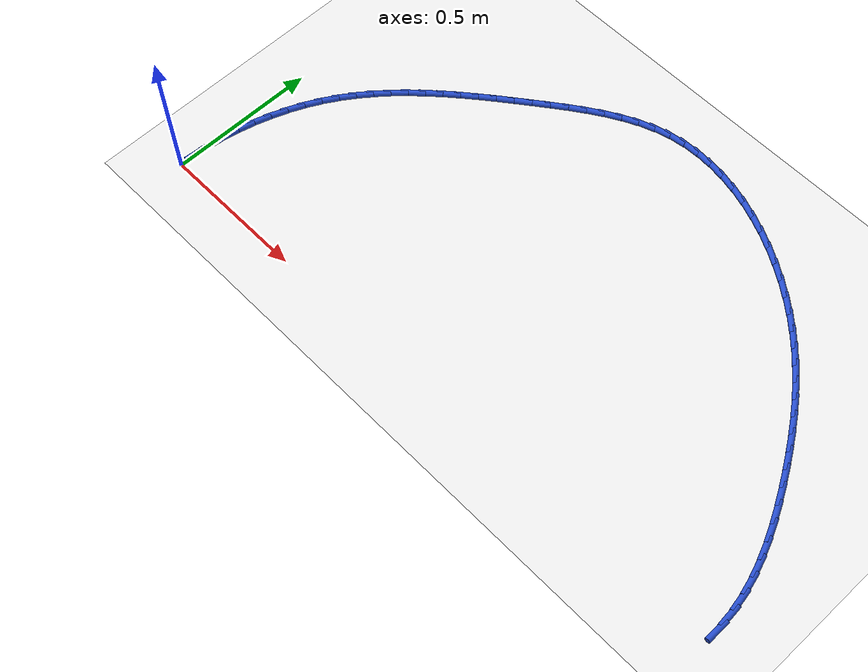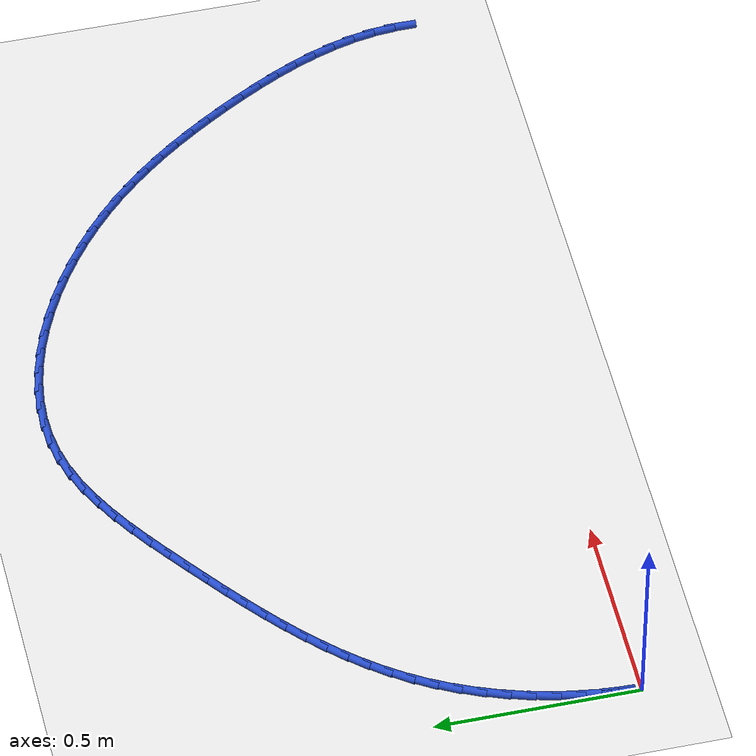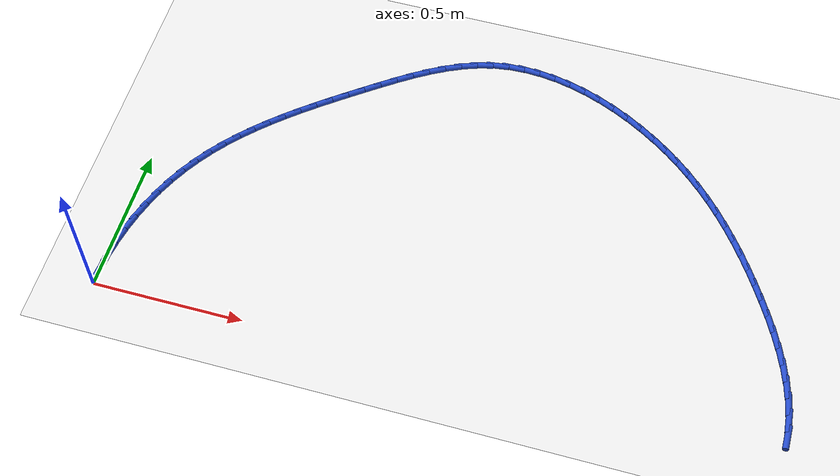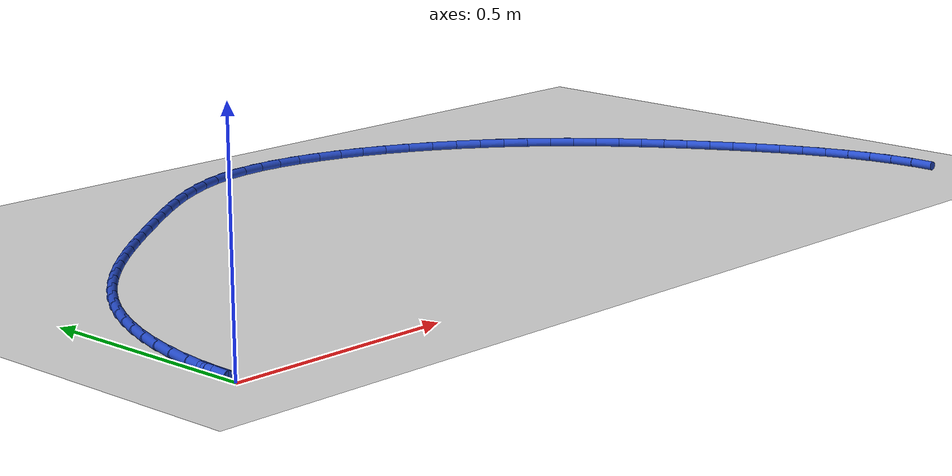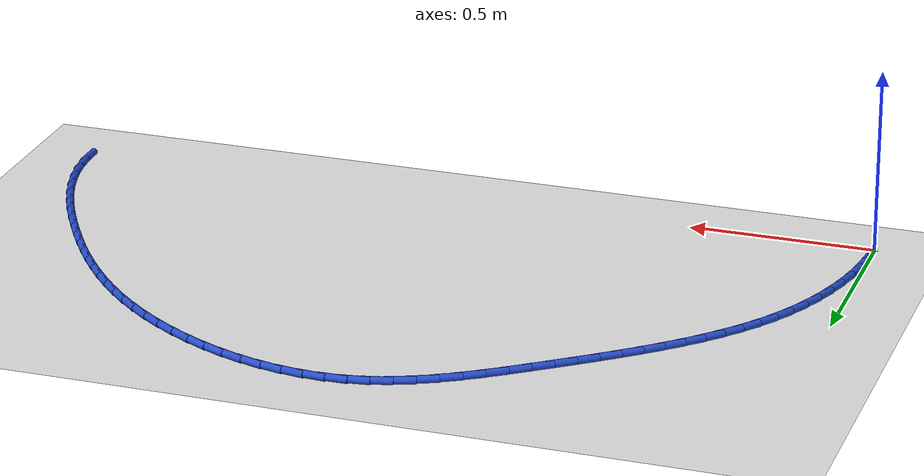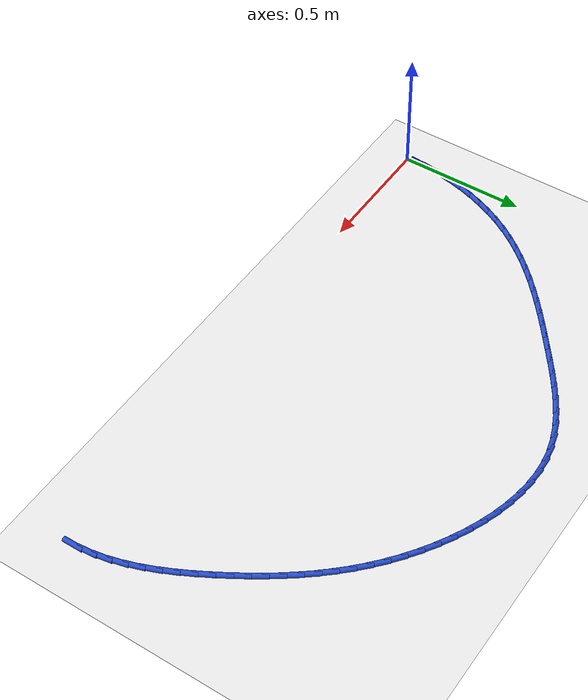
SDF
<sdf version="1.6">
 <world name="default">
  <model name="ground_plane">
   <static>1</static>
   <link name="link">
    <collision name="collision">
     <geometry><plane><normal>0 0 1</normal><size>100 100</size></plane></geometry>
     <surface><friction><ode><mu>100</mu><mu2>50</mu2></ode></friction></surface>
    </collision>
    <visual name="visual">
     <cast_shadows>0</cast_shadows>
     <geometry><plane><normal>0 0 1</normal><size>100 100</size></plane></geometry>
     <material>
      <script><uri>file://media/materials/scripts/gazebo.material</uri><name>Gazebo/WhiteGlow</name></script>
     </material>
    </visual>
   </link>
  </model>
  <model name="line">
   <link name="link_1">
    <pose>0.001768698182348916 0.05782365867538349 0.01 0 1.57 1.482880042260446</pose>
    <collision name="collision">
     <geometry><cylinder><radius>0.01</radius><length>0.08</length></cylinder></geometry>
    </collision>
    <visual name="visual">
     <material>
      <script><name>Gazebo/Blue</name><uri>file://media/materials/scripts/gazebo.material</uri></script>
     </material>
     <geometry><cylinder><radius>0.01</radius><length>0.08</length></cylinder></geometry>
    </visual>
   </link>
   <link name="link_2">
    <pose>0.006856005054726335 0.11553984947027036 0.01 0 1.57 1.4261502410155007</pose>
    <collision name="collision">
     <geometry><cylinder><radius>0.01</radius><length>0.08</length></cylinder></geometry>
    </collision>
    <visual name="visual">
     <material>
      <script><name>Gazebo/Blue</name><uri>file://media/materials/scripts/gazebo.material</uri></script>
     </material>
     <geometry><cylinder><radius>0.01</radius><length>0.08</length></cylinder></geometry>
    </visual>
   </link>
   <link name="link_3">
    <pose>0.015210092329160733 0.1728918547535664 0.01 0 1.57 1.3696270648152526</pose>
    <collision name="collision">
     <geometry><cylinder><radius>0.01</radius><length>0.08</length></cylinder></geometry>
    </collision>
    <visual name="visual">
     <material>
      <script><name>Gazebo/Blue</name><uri>file://media/materials/scripts/gazebo.material</uri></script>
     </material>
     <geometry><cylinder><radius>0.01</radius><length>0.08</length></cylinder></geometry>
    </visual>
   </link>
   <link name="link_4">
    <pose>0.02677913171768052 0.2296229568941773 0.01 0 1.57 1.312905418906529</pose>
    <collision name="collision">
     <geometry><cylinder><radius>0.01</radius><length>0.08</length></cylinder></geometry>
    </collision>
    <visual name="visual">
     <material>
      <script><name>Gazebo/Blue</name><uri>file://media/materials/scripts/gazebo.material</uri></script>
     </material>
     <geometry><cylinder><radius>0.01</radius><length>0.08</length></cylinder></geometry>
    </visual>
   </link>
   <link name="link_5">
    <pose>0.041511294932314126 0.2854764382610088 0.01 0 1.57 1.255577332844114</pose>
    <collision name="collision">
     <geometry><cylinder><radius>0.01</radius><length>0.08</length></cylinder></geometry>
    </collision>
    <visual name="visual">
     <material>
      <script><name>Gazebo/Blue</name><uri>file://media/materials/scripts/gazebo.material</uri></script>
     </material>
     <geometry><cylinder><radius>0.01</radius><length>0.08</length></cylinder></geometry>
    </visual>
   </link>
   <link name="link_6">
    <pose>0.05935475368509002 0.340195581222967 0.01 0 1.57 1.1972328422371523</pose>
    <collision name="collision">
     <geometry><cylinder><radius>0.01</radius><length>0.08</length></cylinder></geometry>
    </collision>
    <visual name="visual">
     <material>
      <script><name>Gazebo/Blue</name><uri>file://media/materials/scripts/gazebo.material</uri></script>
     </material>
     <geometry><cylinder><radius>0.01</radius><length>0.08</length></cylinder></geometry>
    </visual>
   </link>
   <link name="link_7">
    <pose>0.08025767968803658 0.39352366814895734 0.01 0 1.57 1.1374619501417282</pose>
    <collision name="collision">
     <geometry><cylinder><radius>0.01</radius><length>0.08</length></cylinder></geometry>
    </collision>
    <visual name="visual">
     <material>
      <script><name>Gazebo/Blue</name><uri>file://media/materials/scripts/gazebo.material</uri></script>
     </material>
     <geometry><cylinder><radius>0.01</radius><length>0.08</length></cylinder></geometry>
    </visual>
   </link>
   <link name="link_8">
    <pose>0.10416824465318231 0.4452039814078859 0.01 0 1.57 1.0758585751928689</pose>
    <collision name="collision">
     <geometry><cylinder><radius>0.01</radius><length>0.08</length></cylinder></geometry>
    </collision>
    <visual name="visual">
     <material>
      <script><name>Gazebo/Blue</name><uri>file://media/materials/scripts/gazebo.material</uri></script>
     </material>
     <geometry><cylinder><radius>0.01</radius><length>0.08</length></cylinder></geometry>
    </visual>
   </link>
   <link name="link_9">
    <pose>0.13103462029255553 0.4949798033686583 0.01 0 1.57 1.012841055384495</pose>
    <collision name="collision">
     <geometry><cylinder><radius>0.01</radius><length>0.08</length></cylinder></geometry>
    </collision>
    <visual name="visual">
     <material>
      <script><name>Gazebo/Blue</name><uri>file://media/materials/scripts/gazebo.material</uri></script>
     </material>
     <geometry><cylinder><radius>0.01</radius><length>0.08</length></cylinder></geometry>
    </visual>
   </link>
   <link name="link_10">
    <pose>0.16078429837412006 0.5426475686243166 0.01 0 1.57 0.9528299288399403</pose>
    <collision name="collision">
     <geometry><cylinder><radius>0.01</radius><length>0.08</length></cylinder></geometry>
    </collision>
    <visual name="visual">
     <material>
      <script><name>Gazebo/Blue</name><uri>file://media/materials/scripts/gazebo.material</uri></script>
     </material>
     <geometry><cylinder><radius>0.01</radius><length>0.08</length></cylinder></geometry>
    </visual>
   </link>
   <link name="link_11">
    <pose>0.1932318049590259 0.5882940596793593 0.01 0 1.57 0.8978259639607232</pose>
    <collision name="collision">
     <geometry><cylinder><radius>0.01</radius><length>0.08</length></cylinder></geometry>
    </collision>
    <visual name="visual">
     <material>
      <script><name>Gazebo/Blue</name><uri>file://media/materials/scripts/gazebo.material</uri></script>
     </material>
     <geometry><cylinder><radius>0.01</radius><length>0.08</length></cylinder></geometry>
    </visual>
   </link>
   <link name="link_12">
    <pose>0.2281532858907536 0.6321047050464937 0.01 0 1.57 0.8481998952117041</pose>
    <collision name="collision">
     <geometry><cylinder><radius>0.01</radius><length>0.08</length></cylinder></geometry>
    </collision>
    <visual name="visual">
     <material>
      <script><name>Gazebo/Blue</name><uri>file://media/materials/scripts/gazebo.material</uri></script>
     </material>
     <geometry><cylinder><radius>0.01</radius><length>0.08</length></cylinder></geometry>
    </visual>
   </link>
   <link name="link_13">
    <pose>0.2653248554569892 0.6742650143440938 0.01 0 1.57 0.8041423608056926</pose>
    <collision name="collision">
     <geometry><cylinder><radius>0.01</radius><length>0.08</length></cylinder></geometry>
    </collision>
    <visual name="visual">
     <material>
      <script><name>Gazebo/Blue</name><uri>file://media/materials/scripts/gazebo.material</uri></script>
     </material>
     <geometry><cylinder><radius>0.01</radius><length>0.08</length></cylinder></geometry>
    </visual>
   </link>
   <link name="link_14">
    <pose>0.30452262794541907 0.7149604971905332 0.01 0 1.57 0.7657041489449316</pose>
    <collision name="collision">
     <geometry><cylinder><radius>0.01</radius><length>0.08</length></cylinder></geometry>
    </collision>
    <visual name="visual">
     <material>
      <script><name>Gazebo/Blue</name><uri>file://media/materials/scripts/gazebo.material</uri></script>
     </material>
     <geometry><cylinder><radius>0.01</radius><length>0.08</length></cylinder></geometry>
    </visual>
   </link>
   <link name="link_15">
    <pose>0.34552271764372955 0.754376663204186 0.01 0 1.57 0.7328370266947397</pose>
    <collision name="collision">
     <geometry><cylinder><radius>0.01</radius><length>0.08</length></cylinder></geometry>
    </collision>
    <visual name="visual">
     <material>
      <script><name>Gazebo/Blue</name><uri>file://media/materials/scripts/gazebo.material</uri></script>
     </material>
     <geometry><cylinder><radius>0.01</radius><length>0.08</length></cylinder></geometry>
    </visual>
   </link>
   <link name="link_16">
    <pose>0.3881012388396066 0.7926990220034255 0.01 0 1.57 0.7054309392758991</pose>
    <collision name="collision">
     <geometry><cylinder><radius>0.01</radius><length>0.08</length></cylinder></geometry>
    </collision>
    <visual name="visual">
     <material>
      <script><name>Gazebo/Blue</name><uri>file://media/materials/scripts/gazebo.material</uri></script>
     </material>
     <geometry><cylinder><radius>0.01</radius><length>0.08</length></cylinder></geometry>
    </visual>
   </link>
   <link name="link_17">
    <pose>0.4320343058207367 0.8301130832066258 0.01 0 1.57 0.6833448629812282</pose>
    <collision name="collision">
     <geometry><cylinder><radius>0.01</radius><length>0.08</length></cylinder></geometry>
    </collision>
    <visual name="visual">
     <material>
      <script><name>Gazebo/Blue</name><uri>file://media/materials/scripts/gazebo.material</uri></script>
     </material>
     <geometry><cylinder><radius>0.01</radius><length>0.08</length></cylinder></geometry>
    </visual>
   </link>
   <link name="link_18">
    <pose>0.47709803287480596 0.8668043564321607 0.01 0 1.57 0.6664306042422296</pose>
    <collision name="collision">
     <geometry><cylinder><radius>0.01</radius><length>0.08</length></cylinder></geometry>
    </collision>
    <visual name="visual">
     <material>
      <script><name>Gazebo/Blue</name><uri>file://media/materials/scripts/gazebo.material</uri></script>
     </material>
     <geometry><cylinder><radius>0.01</radius><length>0.08</length></cylinder></geometry>
    </visual>
   </link>
   <link name="link_19">
    <pose>0.5230685342895008 0.9029583512984043 0.01 0 1.57 0.6545500152438828</pose>
    <collision name="collision">
     <geometry><cylinder><radius>0.01</radius><length>0.08</length></cylinder></geometry>
    </collision>
    <visual name="visual">
     <material>
      <script><name>Gazebo/Blue</name><uri>file://media/materials/scripts/gazebo.material</uri></script>
     </material>
     <geometry><cylinder><radius>0.01</radius><length>0.08</length></cylinder></geometry>
    </visual>
   </link>
   <link name="link_20">
    <pose>0.5697219243525073 0.93876057742373 0.01 0 1.57 0.647550332014271</pose>
    <collision name="collision">
     <geometry><cylinder><radius>0.01</radius><length>0.08</length></cylinder></geometry>
    </collision>
    <visual name="visual">
     <material>
      <script><name>Gazebo/Blue</name><uri>file://media/materials/scripts/gazebo.material</uri></script>
     </material>
     <geometry><cylinder><radius>0.01</radius><length>0.08</length></cylinder></geometry>
    </visual>
   </link>
   <link name="link_21">
    <pose>0.6168351152757061 0.974394461239286 0.01 0 1.57 0.640355022087266</pose>
    <collision name="collision">
     <geometry><cylinder><radius>0.01</radius><length>0.08</length></cylinder></geometry>
    </collision>
    <visual name="visual">
     <material>
      <script><name>Gazebo/Blue</name><uri>file://media/materials/scripts/gazebo.material</uri></script>
     </material>
     <geometry><cylinder><radius>0.01</radius><length>0.08</length></cylinder></geometry>
    </visual>
   </link>
   <link name="link_22">
    <pose>0.6642949029423264 1.009756549467531 0.01 0 1.57 0.6228082065312626</pose>
    <collision name="collision">
     <geometry><cylinder><radius>0.01</radius><length>0.08</length></cylinder></geometry>
    </collision>
    <visual name="visual">
     <material>
      <script><name>Gazebo/Blue</name><uri>file://media/materials/scripts/gazebo.material</uri></script>
     </material>
     <geometry><cylinder><radius>0.01</radius><length>0.08</length></cylinder></geometry>
    </visual>
   </link>
   <link name="link_23">
    <pose>0.712209070726655 1.044166443901065 0.01 0 1.57 0.5933071996049467</pose>
    <collision name="collision">
     <geometry><cylinder><radius>0.01</radius><length>0.08</length></cylinder></geometry>
    </collision>
    <visual name="visual">
     <material>
      <script><name>Gazebo/Blue</name><uri>file://media/materials/scripts/gazebo.material</uri></script>
     </material>
     <geometry><cylinder><radius>0.01</radius><length>0.08</length></cylinder></geometry>
    </visual>
   </link>
   <link name="link_24">
    <pose>0.7607118825006628 1.0768746121529655 0.01 0 1.57 0.551126709699553</pose>
    <collision name="collision">
     <geometry><cylinder><radius>0.01</radius><length>0.08</length></cylinder></geometry>
    </collision>
    <visual name="visual">
     <material>
      <script><name>Gazebo/Blue</name><uri>file://media/materials/scripts/gazebo.material</uri></script>
     </material>
     <geometry><cylinder><radius>0.01</radius><length>0.08</length></cylinder></geometry>
    </visual>
   </link>
   <link name="link_25">
    <pose>0.8099376021363208 1.1071315218363114 0.01 0 1.57 0.4953088211643238</pose>
    <collision name="collision">
     <geometry><cylinder><radius>0.01</radius><length>0.08</length></cylinder></geometry>
    </collision>
    <visual name="visual">
     <material>
      <script><name>Gazebo/Blue</name><uri>file://media/materials/scripts/gazebo.material</uri></script>
     </material>
     <geometry><cylinder><radius>0.01</radius><length>0.08</length></cylinder></geometry>
    </visual>
   </link>
   <link name="link_26">
    <pose>0.8600204935055995 1.134187640564179 0.01 0 1.57 0.42484423415602623</pose>
    <collision name="collision">
     <geometry><cylinder><radius>0.01</radius><length>0.08</length></cylinder></geometry>
    </collision>
    <visual name="visual">
     <material>
      <script><name>Gazebo/Blue</name><uri>file://media/materials/scripts/gazebo.material</uri></script>
     </material>
     <geometry><cylinder><radius>0.01</radius><length>0.08</length></cylinder></geometry>
    </visual>
   </link>
   <link name="link_27">
    <pose>0.9110948204804701 1.1572934359496474 0.01 0 1.57 0.3389927810897764</pose>
    <collision name="collision">
     <geometry><cylinder><radius>0.01</radius><length>0.08</length></cylinder></geometry>
    </collision>
    <visual name="visual">
     <material>
      <script><name>Gazebo/Blue</name><uri>file://media/materials/scripts/gazebo.material</uri></script>
     </material>
     <geometry><cylinder><radius>0.01</radius><length>0.08</length></cylinder></geometry>
    </visual>
   </link>
   <link name="link_28">
    <pose>0.9632948469329036 1.175699375605794 0.01 0 1.57 0.2377982366015138</pose>
    <collision name="collision">
     <geometry><cylinder><radius>0.01</radius><length>0.08</length></cylinder></geometry>
    </collision>
    <visual name="visual">
     <material>
      <script><name>Gazebo/Blue</name><uri>file://media/materials/scripts/gazebo.material</uri></script>
     </material>
     <geometry><cylinder><radius>0.01</radius><length>0.08</length></cylinder></geometry>
    </visual>
   </link>
   <link name="link_29">
    <pose>1.0167543452260426 1.1886571206484262 0.01 0 1.57 0.12836021299244904</pose>
    <collision name="collision">
     <geometry><cylinder><radius>0.01</radius><length>0.08</length></cylinder></geometry>
    </collision>
    <visual name="visual">
     <material>
      <script><name>Gazebo/Blue</name><uri>file://media/materials/scripts/gazebo.material</uri></script>
     </material>
     <geometry><cylinder><radius>0.01</radius><length>0.08</length></cylinder></geometry>
    </visual>
   </link>
   <link name="link_30">
    <pose>1.0714824943446413 1.1957208751566082 0.01 0 1.57 0.025571645874908105</pose>
    <collision name="collision">
     <geometry><cylinder><radius>0.01</radius><length>0.08</length></cylinder></geometry>
    </collision>
    <visual name="visual">
     <material>
      <script><name>Gazebo/Blue</name><uri>file://media/materials/scripts/gazebo.material</uri></script>
     </material>
     <geometry><cylinder><radius>0.01</radius><length>0.08</length></cylinder></geometry>
    </visual>
   </link>
   <link name="link_31">
    <pose>1.1271997360081711 1.1971459673700062 0.01 0 1.57 -0.06833582482599843</pose>
    <collision name="collision">
     <geometry><cylinder><radius>0.01</radius><length>0.08</length></cylinder></geometry>
    </collision>
    <visual name="visual">
     <material>
      <script><name>Gazebo/Blue</name><uri>file://media/materials/scripts/gazebo.material</uri></script>
     </material>
     <geometry><cylinder><radius>0.01</radius><length>0.08</length></cylinder></geometry>
    </visual>
   </link>
   <link name="link_32">
    <pose>1.1835857211332304 1.1932867754981582 0.01 0 1.57 -0.15369486560998577</pose>
    <collision name="collision">
     <geometry><cylinder><radius>0.01</radius><length>0.08</length></cylinder></geometry>
    </collision>
    <visual name="visual">
     <material>
      <script><name>Gazebo/Blue</name><uri>file://media/materials/scripts/gazebo.material</uri></script>
     </material>
     <geometry><cylinder><radius>0.01</radius><length>0.08</length></cylinder></geometry>
    </visual>
   </link>
   <link name="link_33">
    <pose>1.2403201006364157 1.1844976777506018 0.01 0 1.57 -0.23123690635178773</pose>
    <collision name="collision">
     <geometry><cylinder><radius>0.01</radius><length>0.08</length></cylinder></geometry>
    </collision>
    <visual name="visual">
     <material>
      <script><name>Gazebo/Blue</name><uri>file://media/materials/scripts/gazebo.material</uri></script>
     </material>
     <geometry><cylinder><radius>0.01</radius><length>0.08</length></cylinder></geometry>
    </visual>
   </link>
   <link name="link_34">
    <pose>1.2970825254343243 1.1711330523368746 0.01 0 1.57 -0.3018982265843679</pose>
    <collision name="collision">
     <geometry><cylinder><radius>0.01</radius><length>0.08</length></cylinder></geometry>
    </collision>
    <visual name="visual">
     <material>
      <script><name>Gazebo/Blue</name><uri>file://media/materials/scripts/gazebo.material</uri></script>
     </material>
     <geometry><cylinder><radius>0.01</radius><length>0.08</length></cylinder></geometry>
    </visual>
   </link>
   <link name="link_35">
    <pose>1.353552646443553 1.1535472774665145 0.01 0 1.57 -0.3666887889829337</pose>
    <collision name="collision">
     <geometry><cylinder><radius>0.01</radius><length>0.08</length></cylinder></geometry>
    </collision>
    <visual name="visual">
     <material>
      <script><name>Gazebo/Blue</name><uri>file://media/materials/scripts/gazebo.material</uri></script>
     </material>
     <geometry><cylinder><radius>0.01</radius><length>0.08</length></cylinder></geometry>
    </visual>
   </link>
   <link name="link_36">
    <pose>1.409410114580699 1.132094731349059 0.01 0 1.57 -0.426616518818319</pose>
    <collision name="collision">
     <geometry><cylinder><radius>0.01</radius><length>0.08</length></cylinder></geometry>
    </collision>
    <visual name="visual">
     <material>
      <script><name>Gazebo/Blue</name><uri>file://media/materials/scripts/gazebo.material</uri></script>
     </material>
     <geometry><cylinder><radius>0.01</radius><length>0.08</length></cylinder></geometry>
    </visual>
   </link>
   <link name="link_37">
    <pose>1.4643345807623604 1.1071297921940455 0.01 0 1.57 -0.48265236539768686</pose>
    <collision name="collision">
     <geometry><cylinder><radius>0.01</radius><length>0.08</length></cylinder></geometry>
    </collision>
    <visual name="visual">
     <material>
      <script><name>Gazebo/Blue</name><uri>file://media/materials/scripts/gazebo.material</uri></script>
     </material>
     <geometry><cylinder><radius>0.01</radius><length>0.08</length></cylinder></geometry>
    </visual>
   </link>
   <link name="link_38">
    <pose>1.5180056959051327 1.0790068382110118 0.01 0 1.57 -0.5357225413958424</pose>
    <collision name="collision">
     <geometry><cylinder><radius>0.01</radius><length>0.08</length></cylinder></geometry>
    </collision>
    <visual name="visual">
     <material>
      <script><name>Gazebo/Blue</name><uri>file://media/materials/scripts/gazebo.material</uri></script>
     </material>
     <geometry><cylinder><radius>0.01</radius><length>0.08</length></cylinder></geometry>
    </visual>
   </link>
   <link name="link_39">
    <pose>1.5701031109256143 1.0480802476094957 0.01 0 1.57 -0.5867181807534547</pose>
    <collision name="collision">
     <geometry><cylinder><radius>0.01</radius><length>0.08</length></cylinder></geometry>
    </collision>
    <visual name="visual">
     <material>
      <script><name>Gazebo/Blue</name><uri>file://media/materials/scripts/gazebo.material</uri></script>
     </material>
     <geometry><cylinder><radius>0.01</radius><length>0.08</length></cylinder></geometry>
    </visual>
   </link>
   <link name="link_40">
    <pose>1.6203064767404016 1.014704398599035 0.01 0 1.57 -0.6365166082892342</pose>
    <collision name="collision">
     <geometry><cylinder><radius>0.01</radius><length>0.08</length></cylinder></geometry>
    </collision>
    <visual name="visual">
     <material>
      <script><name>Gazebo/Blue</name><uri>file://media/materials/scripts/gazebo.material</uri></script>
     </material>
     <geometry><cylinder><radius>0.01</radius><length>0.08</length></cylinder></geometry>
    </visual>
   </link>
   <link name="link_41">
    <pose>1.6682954442660922 0.9792336693891666 0.01 0 1.57 -0.6859057750326655</pose>
    <collision name="collision">
     <geometry><cylinder><radius>0.01</radius><length>0.08</length></cylinder></geometry>
    </collision>
    <visual name="visual">
     <material>
      <script><name>Gazebo/Blue</name><uri>file://media/materials/scripts/gazebo.material</uri></script>
     </material>
     <geometry><cylinder><radius>0.01</radius><length>0.08</length></cylinder></geometry>
    </visual>
   </link>
   <link name="link_42">
    <pose>1.7137821523757486 0.9420038850354668 0.01 0 1.57 -0.7344305576272383</pose>
    <collision name="collision">
     <geometry><cylinder><radius>0.01</radius><length>0.08</length></cylinder></geometry>
    </collision>
    <visual name="visual">
     <material>
      <script><name>Gazebo/Blue</name><uri>file://media/materials/scripts/gazebo.material</uri></script>
     </material>
     <geometry><cylinder><radius>0.01</radius><length>0.08</length></cylinder></geometry>
    </visual>
   </link>
   <link name="link_43">
    <pose>1.7567832747848946 0.9031769574751316 0.01 0 1.57 -0.7811852712467912</pose>
    <collision name="collision">
     <geometry><cylinder><radius>0.01</radius><length>0.08</length></cylinder></geometry>
    </collision>
    <visual name="visual">
     <material>
      <script><name>Gazebo/Blue</name><uri>file://media/materials/scripts/gazebo.material</uri></script>
     </material>
     <geometry><cylinder><radius>0.01</radius><length>0.08</length></cylinder></geometry>
    </visual>
   </link>
   <link name="link_44">
    <pose>1.797482020462105 0.8628196940427265 0.01 0 1.57 -0.8256794081637615</pose>
    <collision name="collision">
     <geometry><cylinder><radius>0.01</radius><length>0.08</length></cylinder></geometry>
    </collision>
    <visual name="visual">
     <material>
      <script><name>Gazebo/Blue</name><uri>file://media/materials/scripts/gazebo.material</uri></script>
     </material>
     <geometry><cylinder><radius>0.01</radius><length>0.08</length></cylinder></geometry>
    </visual>
   </link>
   <link name="link_45">
    <pose>1.8360632932712155 0.8209979341555929 0.01 0 1.57 -0.8674942536157254</pose>
    <collision name="collision">
     <geometry><cylinder><radius>0.01</radius><length>0.08</length></cylinder></geometry>
    </collision>
    <visual name="visual">
     <material>
      <script><name>Gazebo/Blue</name><uri>file://media/materials/scripts/gazebo.material</uri></script>
     </material>
     <geometry><cylinder><radius>0.01</radius><length>0.08</length></cylinder></geometry>
    </visual>
   </link>
   <link name="link_46">
    <pose>1.87271199707606 0.7777775172310726 0.01 0 1.57 -0.9062869493367304</pose>
    <collision name="collision">
     <geometry><cylinder><radius>0.01</radius><length>0.08</length></cylinder></geometry>
    </collision>
    <visual name="visual">
     <material>
      <script><name>Gazebo/Blue</name><uri>file://media/materials/scripts/gazebo.material</uri></script>
     </material>
     <geometry><cylinder><radius>0.01</radius><length>0.08</length></cylinder></geometry>
    </visual>
   </link>
   <link name="link_47">
    <pose>1.9076130357404721 0.733224282686506 0.01 0 1.57 -0.9417932888797513</pose>
    <collision name="collision">
     <geometry><cylinder><radius>0.01</radius><length>0.08</length></cylinder></geometry>
    </collision>
    <visual name="visual">
     <material>
      <script><name>Gazebo/Blue</name><uri>file://media/materials/scripts/gazebo.material</uri></script>
     </material>
     <geometry><cylinder><radius>0.01</radius><length>0.08</length></cylinder></geometry>
    </visual>
   </link>
   <link name="link_48">
    <pose>1.940951313128286 0.6874040699392345 0.01 0 1.57 -0.9738247328047687</pose>
    <collision name="collision">
     <geometry><cylinder><radius>0.01</radius><length>0.08</length></cylinder></geometry>
    </collision>
    <visual name="visual">
     <material>
      <script><name>Gazebo/Blue</name><uri>file://media/materials/scripts/gazebo.material</uri></script>
     </material>
     <geometry><cylinder><radius>0.01</radius><length>0.08</length></cylinder></geometry>
    </visual>
   </link>
   <link name="link_49">
    <pose>1.9729117331033363 0.6403827184066002 0.01 0 1.57 -1.0022612024371627</pose>
    <collision name="collision">
     <geometry><cylinder><radius>0.01</radius><length>0.08</length></cylinder></geometry>
    </collision>
    <visual name="visual">
     <material>
      <script><name>Gazebo/Blue</name><uri>file://media/materials/scripts/gazebo.material</uri></script>
     </material>
     <geometry><cylinder><radius>0.01</radius><length>0.08</length></cylinder></geometry>
    </visual>
   </link>
   <link name="link_50">
    <pose>2.0036791995294574 0.5922260675059435 0.01 0 1.57 -1.0270413535512604</pose>
    <collision name="collision">
     <geometry><cylinder><radius>0.01</radius><length>0.08</length></cylinder></geometry>
    </collision>
    <visual name="visual">
     <material>
      <script><name>Gazebo/Blue</name><uri>file://media/materials/scripts/gazebo.material</uri></script>
     </material>
     <geometry><cylinder><radius>0.01</radius><length>0.08</length></cylinder></geometry>
    </visual>
   </link>
   <link name="link_51">
    <pose>2.0334386162704825 0.542999956654606 0.01 0 1.57 -1.0494349540760883</pose>
    <collision name="collision">
     <geometry><cylinder><radius>0.01</radius><length>0.08</length></cylinder></geometry>
    </collision>
    <visual name="visual">
     <material>
      <script><name>Gazebo/Blue</name><uri>file://media/materials/scripts/gazebo.material</uri></script>
     </material>
     <geometry><cylinder><radius>0.01</radius><length>0.08</length></cylinder></geometry>
    </visual>
   </link>
   <link name="link_52">
    <pose>2.0622873383077667 0.49277331462831264 0.01 0 1.57 -1.0763377351874506</pose>
    <collision name="collision">
     <geometry><cylinder><radius>0.01</radius><length>0.08</length></cylinder></geometry>
    </collision>
    <visual name="visual">
     <material>
      <script><name>Gazebo/Blue</name><uri>file://media/materials/scripts/gazebo.material</uri></script>
     </material>
     <geometry><cylinder><radius>0.01</radius><length>0.08</length></cylinder></geometry>
    </visual>
   </link>
   <link name="link_53">
    <pose>2.0898594127757497 0.4416314190577433 0.01 0 1.57 -1.1103320250019273</pose>
    <collision name="collision">
     <geometry><cylinder><radius>0.01</radius><length>0.08</length></cylinder></geometry>
    </collision>
    <visual name="visual">
     <material>
      <script><name>Gazebo/Blue</name><uri>file://media/materials/scripts/gazebo.material</uri></script>
     </material>
     <geometry><cylinder><radius>0.01</radius><length>0.08</length></cylinder></geometry>
    </visual>
   </link>
   <link name="link_54">
    <pose>2.115636200888582 0.38966493543821445 0.01 0 1.57 -1.1519325398730595</pose>
    <collision name="collision">
     <geometry><cylinder><radius>0.01</radius><length>0.08</length></cylinder></geometry>
    </collision>
    <visual name="visual">
     <material>
      <script><name>Gazebo/Blue</name><uri>file://media/materials/scripts/gazebo.material</uri></script>
     </material>
     <geometry><cylinder><radius>0.01</radius><length>0.08</length></cylinder></geometry>
    </visual>
   </link>
   <link name="link_55">
    <pose>2.139098970021138 0.33696453257637266 0.01 0 1.57 -1.2017747309811067</pose>
    <collision name="collision">
     <geometry><cylinder><radius>0.01</radius><length>0.08</length></cylinder></geometry>
    </collision>
    <visual name="visual">
     <material>
      <script><name>Gazebo/Blue</name><uri>file://media/materials/scripts/gazebo.material</uri></script>
     </material>
     <geometry><cylinder><radius>0.01</radius><length>0.08</length></cylinder></geometry>
    </visual>
   </link>
   <link name="link_56">
    <pose>2.1597289875482923 0.28362087927886287 0.01 0 1.57 -1.2605592985861764</pose>
    <collision name="collision">
     <geometry><cylinder><radius>0.01</radius><length>0.08</length></cylinder></geometry>
    </collision>
    <visual name="visual">
     <material>
      <script><name>Gazebo/Blue</name><uri>file://media/materials/scripts/gazebo.material</uri></script>
     </material>
     <geometry><cylinder><radius>0.01</radius><length>0.08</length></cylinder></geometry>
    </visual>
   </link>
   <link name="link_57">
    <pose>2.177007520844919 0.22972464435233161 0.01 0 1.57 -1.3289578332785583</pose>
    <collision name="collision">
     <geometry><cylinder><radius>0.01</radius><length>0.08</length></cylinder></geometry>
    </collision>
    <visual name="visual">
     <material>
      <script><name>Gazebo/Blue</name><uri>file://media/materials/scripts/gazebo.material</uri></script>
     </material>
     <geometry><cylinder><radius>0.01</radius><length>0.08</length></cylinder></geometry>
    </visual>
   </link>
   <link name="link_58">
    <pose>2.190415837285894 0.17536649660342407 0.01 0 1.57 -1.407361606895827</pose>
    <collision name="collision">
     <geometry><cylinder><radius>0.01</radius><length>0.08</length></cylinder></geometry>
    </collision>
    <visual name="visual">
     <material>
      <script><name>Gazebo/Blue</name><uri>file://media/materials/scripts/gazebo.material</uri></script>
     </material>
     <geometry><cylinder><radius>0.01</radius><length>0.08</length></cylinder></geometry>
    </visual>
   </link>
   <link name="link_59">
    <pose>2.1994410456738605 0.12063695220190497 0.01 0 1.57 -1.4904200816607325</pose>
    <collision name="collision">
     <geometry><cylinder><radius>0.01</radius><length>0.08</length></cylinder></geometry>
    </collision>
    <visual name="visual">
     <material>
      <script><name>Gazebo/Blue</name><uri>file://media/materials/scripts/gazebo.material</uri></script>
     </material>
     <geometry><cylinder><radius>0.01</radius><length>0.08</length></cylinder></geometry>
    </visual>
   </link>
   <link name="link_60">
    <pose>2.203872759976014 0.06561862283820445 0.01 0 1.57 -1.5695103728599837</pose>
    <collision name="collision">
     <geometry><cylinder><radius>0.01</radius><length>0.08</length></cylinder></geometry>
    </collision>
    <visual name="visual">
     <material>
      <script><name>Gazebo/Blue</name><uri>file://media/materials/scripts/gazebo.material</uri></script>
     </material>
     <geometry><cylinder><radius>0.01</radius><length>0.08</length></cylinder></geometry>
    </visual>
   </link>
   <link name="link_121">
    <pose>0.0017837510647260892 0.057840053907604036 0.01 0 1.57 1.5399667238155847</pose>
    <collision name="collision">
     <geometry><cylinder><radius>0.01</radius><length>0.08</length></cylinder></geometry>
    </collision>
    <visual name="visual">
     <material>
      <script><name>Gazebo/Blue</name><uri>file://media/materials/scripts/gazebo.material</uri></script>
     </material>
     <geometry><cylinder><radius>0.01</radius><length>0.08</length></cylinder></geometry>
    </visual>
   </link>
  </model>
 </world>
</sdf>
